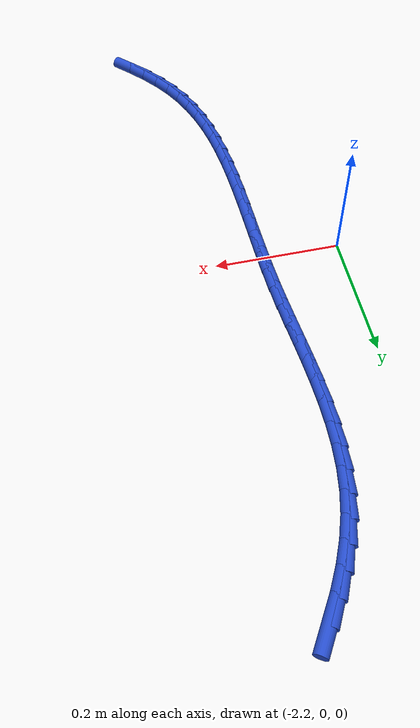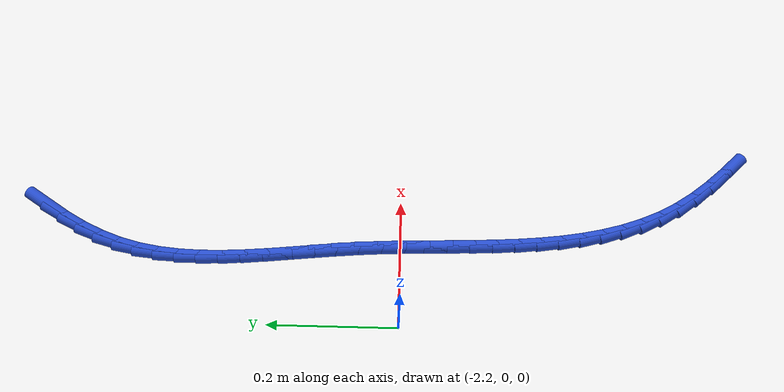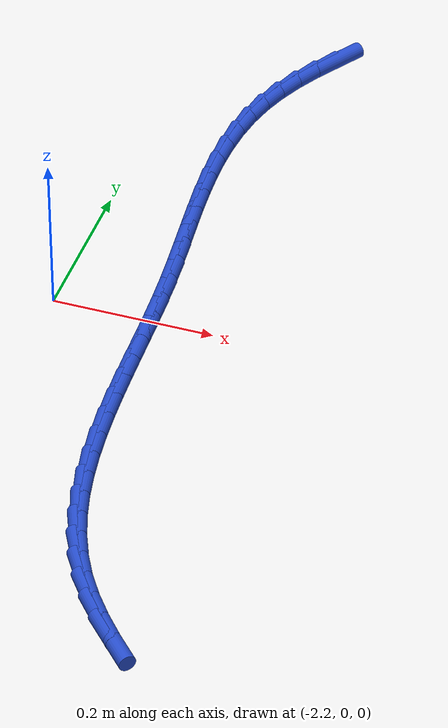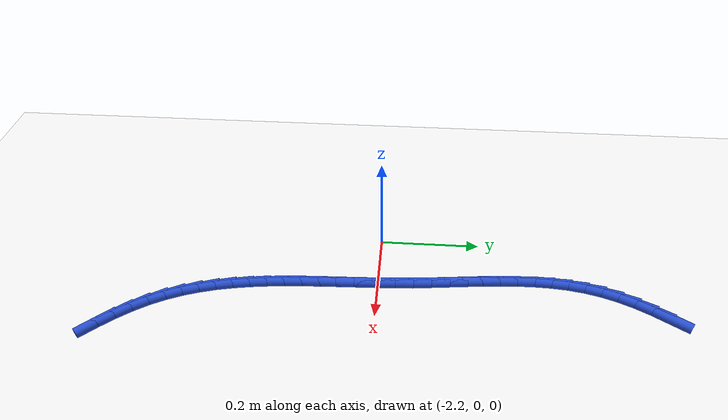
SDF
<sdf version="1.6">
 <world name="default">
  <model name="ground_plane">
   <static>1</static>
   <link name="link">
    <collision name="collision">
     <geometry><plane><normal>0 0 1</normal><size>100 100</size></plane></geometry>
     <surface><friction><ode><mu>100</mu><mu2>50</mu2></ode></friction></surface>
    </collision>
    <visual name="visual">
     <cast_shadows>0</cast_shadows>
     <geometry><plane><normal>0 0 1</normal><size>100 100</size></plane></geometry>
     <material>
      <script><uri>file://media/materials/scripts/gazebo.material</uri><name>Gazebo/WhiteGlow</name></script>
     </material>
    </visual>
   </link>
  </model>
  <model name="line">
   <link name="link_83">
    <pose>-2.020036668935926 0.5485017603186237 0.01 0 1.57 0.9954416307006323</pose>
    <collision name="collision">
     <geometry><cylinder><radius>0.01</radius><length>0.08</length></cylinder></geometry>
    </collision>
    <visual name="visual">
     <material>
      <script><name>Gazebo/Blue</name><uri>file://media/materials/scripts/gazebo.material</uri></script>
     </material>
     <geometry><cylinder><radius>0.01</radius><length>0.08</length></cylinder></geometry>
    </visual>
   </link>
   <link name="link_84">
    <pose>-2.0382610854878953 0.5204014794071488 0.01 0 1.57 1.0597476678402529</pose>
    <collision name="collision">
     <geometry><cylinder><radius>0.01</radius><length>0.08</length></cylinder></geometry>
    </collision>
    <visual name="visual">
     <material>
      <script><name>Gazebo/Blue</name><uri>file://media/materials/scripts/gazebo.material</uri></script>
     </material>
     <geometry><cylinder><radius>0.01</radius><length>0.08</length></cylinder></geometry>
    </visual>
   </link>
   <link name="link_85">
    <pose>-2.054391799385333 0.49163445613892415 0.01 0 1.57 1.133859416235579</pose>
    <collision name="collision">
     <geometry><cylinder><radius>0.01</radius><length>0.08</length></cylinder></geometry>
    </collision>
    <visual name="visual">
     <material>
      <script><name>Gazebo/Blue</name><uri>file://media/materials/scripts/gazebo.material</uri></script>
     </material>
     <geometry><cylinder><radius>0.01</radius><length>0.08</length></cylinder></geometry>
    </visual>
   </link>
   <link name="link_86">
    <pose>-2.0681436458963574 0.46219001705427154 0.01 0 1.57 1.2182046653109042</pose>
    <collision name="collision">
     <geometry><cylinder><radius>0.01</radius><length>0.08</length></cylinder></geometry>
    </collision>
    <visual name="visual">
     <material>
      <script><name>Gazebo/Blue</name><uri>file://media/materials/scripts/gazebo.material</uri></script>
     </material>
     <geometry><cylinder><radius>0.01</radius><length>0.08</length></cylinder></geometry>
    </visual>
   </link>
   <link name="link_87">
    <pose>-2.079231460289089 0.43205748869351235 0.01 0 1.57 1.3106681438810828</pose>
    <collision name="collision">
     <geometry><cylinder><radius>0.01</radius><length>0.08</length></cylinder></geometry>
    </collision>
    <visual name="visual">
     <material>
      <script><name>Gazebo/Blue</name><uri>file://media/materials/scripts/gazebo.material</uri></script>
     </material>
     <geometry><cylinder><radius>0.01</radius><length>0.08</length></cylinder></geometry>
    </visual>
   </link>
   <link name="link_88">
    <pose>-2.0874358032344955 0.4012324965084866 0.01 0 1.57 1.3974873219055268</pose>
    <collision name="collision">
     <geometry><cylinder><radius>0.01</radius><length>0.08</length></cylinder></geometry>
    </collision>
    <visual name="visual">
     <material>
      <script><name>Gazebo/Blue</name><uri>file://media/materials/scripts/gazebo.material</uri></script>
     </material>
     <geometry><cylinder><radius>0.01</radius><length>0.08</length></cylinder></geometry>
    </visual>
   </link>
   <link name="link_89">
    <pose>-2.09294730133179 0.3697499653525889 0.01 0 1.57 1.472419461701992</pose>
    <collision name="collision">
     <geometry><cylinder><radius>0.01</radius><length>0.08</length></cylinder></geometry>
    </collision>
    <visual name="visual">
     <material>
      <script><name>Gazebo/Blue</name><uri>file://media/materials/scripts/gazebo.material</uri></script>
     </material>
     <geometry><cylinder><radius>0.01</radius><length>0.08</length></cylinder></geometry>
    </visual>
   </link>
   <link name="link_90">
    <pose>-2.0961144403581535 0.3376599487958346 0.01 0 1.57 1.5349253558592544</pose>
    <collision name="collision">
     <geometry><cylinder><radius>0.01</radius><length>0.08</length></cylinder></geometry>
    </collision>
    <visual name="visual">
     <material>
      <script><name>Gazebo/Blue</name><uri>file://media/materials/scripts/gazebo.material</uri></script>
     </material>
     <geometry><cylinder><radius>0.01</radius><length>0.08</length></cylinder></geometry>
    </visual>
   </link>
   <link name="link_91">
    <pose>-2.0972860374427515 0.30501253216394897 0.01 0 1.57 -1.5564666915634682</pose>
    <collision name="collision">
     <geometry><cylinder><radius>0.01</radius><length>0.08</length></cylinder></geometry>
    </collision>
    <visual name="visual">
     <material>
      <script><name>Gazebo/Blue</name><uri>file://media/materials/scripts/gazebo.material</uri></script>
     </material>
     <geometry><cylinder><radius>0.01</radius><length>0.08</length></cylinder></geometry>
    </visual>
   </link>
   <link name="link_92">
    <pose>-2.0968109097147534 0.27185780078265737 0.01 0 1.57 -1.51809503911049</pose>
    <collision name="collision">
     <geometry><cylinder><radius>0.01</radius><length>0.08</length></cylinder></geometry>
    </collision>
    <visual name="visual">
     <material>
      <script><name>Gazebo/Blue</name><uri>file://media/materials/scripts/gazebo.material</uri></script>
     </material>
     <geometry><cylinder><radius>0.01</radius><length>0.08</length></cylinder></geometry>
    </visual>
   </link>
   <link name="link_93">
    <pose>-2.095037874303325 0.23824583997768498 0.01 0 1.57 -1.4909488869938654</pose>
    <collision name="collision">
     <geometry><cylinder><radius>0.01</radius><length>0.08</length></cylinder></geometry>
    </collision>
    <visual name="visual">
     <material>
      <script><name>Gazebo/Blue</name><uri>file://media/materials/scripts/gazebo.material</uri></script>
     </material>
     <geometry><cylinder><radius>0.01</radius><length>0.08</length></cylinder></geometry>
    </visual>
   </link>
   <link name="link_94">
    <pose>-2.0923157483376347 0.2042267350747572 0.01 0 1.57 -1.4744472321491544</pose>
    <collision name="collision">
     <geometry><cylinder><radius>0.01</radius><length>0.08</length></cylinder></geometry>
    </collision>
    <visual name="visual">
     <material>
      <script><name>Gazebo/Blue</name><uri>file://media/materials/scripts/gazebo.material</uri></script>
     </material>
     <geometry><cylinder><radius>0.01</radius><length>0.08</length></cylinder></geometry>
    </visual>
   </link>
   <link name="link_95">
    <pose>-2.0889933489468486 0.16985057139959936 0.01 0 1.57 -1.4681156856893767</pose>
    <collision name="collision">
     <geometry><cylinder><radius>0.01</radius><length>0.08</length></cylinder></geometry>
    </collision>
    <visual name="visual">
     <material>
      <script><name>Gazebo/Blue</name><uri>file://media/materials/scripts/gazebo.material</uri></script>
     </material>
     <geometry><cylinder><radius>0.01</radius><length>0.08</length></cylinder></geometry>
    </visual>
   </link>
   <link name="link_96">
    <pose>-2.085419493260136 0.1351674342779372 0.01 0 1.57 -1.4716238155051418</pose>
    <collision name="collision">
     <geometry><cylinder><radius>0.01</radius><length>0.08</length></cylinder></geometry>
    </collision>
    <visual name="visual">
     <material>
      <script><name>Gazebo/Blue</name><uri>file://media/materials/scripts/gazebo.material</uri></script>
     </material>
     <geometry><cylinder><radius>0.01</radius><length>0.08</length></cylinder></geometry>
    </visual>
   </link>
   <link name="link_97">
    <pose>-2.081942998406663 0.10022740903549524 0.01 0 1.57 -1.4847902325735955</pose>
    <collision name="collision">
     <geometry><cylinder><radius>0.01</radius><length>0.08</length></cylinder></geometry>
    </collision>
    <visual name="visual">
     <material>
      <script><name>Gazebo/Blue</name><uri>file://media/materials/scripts/gazebo.material</uri></script>
     </material>
     <geometry><cylinder><radius>0.01</radius><length>0.08</length></cylinder></geometry>
    </visual>
   </link>
   <link name="link_98">
    <pose>-2.0789126815155963 0.06508058099799927 0.01 0 1.57 -1.5057254777299764</pose>
    <collision name="collision">
     <geometry><cylinder><radius>0.01</radius><length>0.08</length></cylinder></geometry>
    </collision>
    <visual name="visual">
     <material>
      <script><name>Gazebo/Blue</name><uri>file://media/materials/scripts/gazebo.material</uri></script>
     </material>
     <geometry><cylinder><radius>0.01</radius><length>0.08</length></cylinder></geometry>
    </visual>
   </link>
   <link name="link_99">
    <pose>-2.076612486736325 0.029781404965039598 0.01 0 1.57 -1.523644288274695</pose>
    <collision name="collision">
     <geometry><cylinder><radius>0.01</radius><length>0.08</length></cylinder></geometry>
    </collision>
    <visual name="visual">
     <material>
      <script><name>Gazebo/Blue</name><uri>file://media/materials/scripts/gazebo.material</uri></script>
     </material>
     <geometry><cylinder><radius>0.01</radius><length>0.08</length></cylinder></geometry>
    </visual>
   </link>
   <link name="link_100">
    <pose>-2.0749434217937957 -0.005589871850615254 0.01 0 1.57 -1.534692976717922</pose>
    <collision name="collision">
     <geometry><cylinder><radius>0.01</radius><length>0.08</length></cylinder></geometry>
    </collision>
    <visual name="visual">
     <material>
      <script><name>Gazebo/Blue</name><uri>file://media/materials/scripts/gazebo.material</uri></script>
     </material>
     <geometry><cylinder><radius>0.01</radius><length>0.08</length></cylinder></geometry>
    </visual>
   </link>
   <link name="link_101">
    <pose>-2.0736664799341002 -0.04094357165958111 0.01 0 1.57 -1.5389164289456263</pose>
    <collision name="collision">
     <geometry><cylinder><radius>0.01</radius><length>0.08</length></cylinder></geometry>
    </collision>
    <visual name="visual">
     <material>
      <script><name>Gazebo/Blue</name><uri>file://media/materials/scripts/gazebo.material</uri></script>
     </material>
     <geometry><cylinder><radius>0.01</radius><length>0.08</length></cylinder></geometry>
    </visual>
   </link>
   <link name="link_102">
    <pose>-2.072542446492661 -0.07619000266879705 0.01 0 1.57 -1.5362777188165193</pose>
    <collision name="collision">
     <geometry><cylinder><radius>0.01</radius><length>0.08</length></cylinder></geometry>
    </collision>
    <visual name="visual">
     <material>
      <script><name>Gazebo/Blue</name><uri>file://media/materials/scripts/gazebo.material</uri></script>
     </material>
     <geometry><cylinder><radius>0.01</radius><length>0.08</length></cylinder></geometry>
    </visual>
   </link>
   <link name="link_103">
    <pose>-2.0713321068049004 -0.1112394730852024 0.01 0 1.57 -1.5266439094920232</pose>
    <collision name="collision">
     <geometry><cylinder><radius>0.01</radius><length>0.08</length></cylinder></geometry>
    </collision>
    <visual name="visual">
     <material>
      <script><name>Gazebo/Blue</name><uri>file://media/materials/scripts/gazebo.material</uri></script>
     </material>
     <geometry><cylinder><radius>0.01</radius><length>0.08</length></cylinder></geometry>
    </visual>
   </link>
   <link name="link_104">
    <pose>-2.0697962462062396 -0.14600229111573615 0.01 0 1.57 -1.5097842827070018</pose>
    <collision name="collision">
     <geometry><cylinder><radius>0.01</radius><length>0.08</length></cylinder></geometry>
    </collision>
    <visual name="visual">
     <material>
      <script><name>Gazebo/Blue</name><uri>file://media/materials/scripts/gazebo.material</uri></script>
     </material>
     <geometry><cylinder><radius>0.01</radius><length>0.08</length></cylinder></geometry>
    </visual>
   </link>
   <link name="link_105">
    <pose>-2.0676956500321024 -0.18038876496733752 0.01 0 1.57 -1.4853764806179743</pose>
    <collision name="collision">
     <geometry><cylinder><radius>0.01</radius><length>0.08</length></cylinder></geometry>
    </collision>
    <visual name="visual">
     <material>
      <script><name>Gazebo/Blue</name><uri>file://media/materials/scripts/gazebo.material</uri></script>
     </material>
     <geometry><cylinder><radius>0.01</radius><length>0.08</length></cylinder></geometry>
    </visual>
   </link>
   <link name="link_106">
    <pose>-2.064791103617908 -0.21430920284694555 0.01 0 1.57 -1.453023914822367</pose>
    <collision name="collision">
     <geometry><cylinder><radius>0.01</radius><length>0.08</length></cylinder></geometry>
    </collision>
    <visual name="visual">
     <material>
      <script><name>Gazebo/Blue</name><uri>file://media/materials/scripts/gazebo.material</uri></script>
     </material>
     <geometry><cylinder><radius>0.01</radius><length>0.08</length></cylinder></geometry>
    </visual>
   </link>
   <link name="link_107">
    <pose>-2.060843392299082 -0.24767391296149954 0.01 0 1.57 -1.4122899376955553</pose>
    <collision name="collision">
     <geometry><cylinder><radius>0.01</radius><length>0.08</length></cylinder></geometry>
    </collision>
    <visual name="visual">
     <material>
      <script><name>Gazebo/Blue</name><uri>file://media/materials/scripts/gazebo.material</uri></script>
     </material>
     <geometry><cylinder><radius>0.01</radius><length>0.08</length></cylinder></geometry>
    </visual>
   </link>
   <link name="link_108">
    <pose>-2.0556133014110443 -0.28039320351793856 0.01 0 1.57 -1.362756068350395</pose>
    <collision name="collision">
     <geometry><cylinder><radius>0.01</radius><length>0.08</length></cylinder></geometry>
    </collision>
    <visual name="visual">
     <material>
      <script><name>Gazebo/Blue</name><uri>file://media/materials/scripts/gazebo.material</uri></script>
     </material>
     <geometry><cylinder><radius>0.01</radius><length>0.08</length></cylinder></geometry>
    </visual>
   </link>
   <link name="link_109">
    <pose>-2.0488616162892175 -0.3123773827232018 0.01 0 1.57 -1.3041117224252987</pose>
    <collision name="collision">
     <geometry><cylinder><radius>0.01</radius><length>0.08</length></cylinder></geometry>
    </collision>
    <visual name="visual">
     <material>
      <script><name>Gazebo/Blue</name><uri>file://media/materials/scripts/gazebo.material</uri></script>
     </material>
     <geometry><cylinder><radius>0.01</radius><length>0.08</length></cylinder></geometry>
    </visual>
   </link>
   <link name="link_110">
    <pose>-2.0403491222690233 -0.34353675878422835 0.01 0 1.57 -1.2362789809003452</pose>
    <collision name="collision">
     <geometry><cylinder><radius>0.01</radius><length>0.08</length></cylinder></geometry>
    </collision>
    <visual name="visual">
     <material>
      <script><name>Gazebo/Blue</name><uri>file://media/materials/scripts/gazebo.material</uri></script>
     </material>
     <geometry><cylinder><radius>0.01</radius><length>0.08</length></cylinder></geometry>
    </visual>
   </link>
   <link name="link_111">
    <pose>-2.0298366046858844 -0.3737816399079574 0.01 0 1.57 -1.15956476094815</pose>
    <collision name="collision">
     <geometry><cylinder><radius>0.01</radius><length>0.08</length></cylinder></geometry>
    </collision>
    <visual name="visual">
     <material>
      <script><name>Gazebo/Blue</name><uri>file://media/materials/scripts/gazebo.material</uri></script>
     </material>
     <geometry><cylinder><radius>0.01</radius><length>0.08</length></cylinder></geometry>
    </visual>
   </link>
   <link name="link_112">
    <pose>-2.0170848488752227 -0.40302233430132806 0.01 0 1.57 -1.0748127150763933</pose>
    <collision name="collision">
     <geometry><cylinder><radius>0.01</radius><length>0.08</length></cylinder></geometry>
    </collision>
    <visual name="visual">
     <material>
      <script><name>Gazebo/Blue</name><uri>file://media/materials/scripts/gazebo.material</uri></script>
     </material>
     <geometry><cylinder><radius>0.01</radius><length>0.08</length></cylinder></geometry>
    </visual>
   </link>
   <link name="link_113">
    <pose>-2.001854640172461 -0.43116915017127955 0.01 0 1.57 -0.9856146404977786</pose>
    <collision name="collision">
     <geometry><cylinder><radius>0.01</radius><length>0.08</length></cylinder></geometry>
    </collision>
    <visual name="visual">
     <material>
      <script><name>Gazebo/Blue</name><uri>file://media/materials/scripts/gazebo.material</uri></script>
     </material>
     <geometry><cylinder><radius>0.01</radius><length>0.08</length></cylinder></geometry>
    </visual>
   </link>
   <link name="link_114">
    <pose>-1.9839735339199358 -0.45815544024462984 0.01 0 1.57 -0.9075027163497561</pose>
    <collision name="collision">
     <geometry><cylinder><radius>0.01</radius><length>0.08</length></cylinder></geometry>
    </collision>
    <visual name="visual">
     <material>
      <script><name>Gazebo/Blue</name><uri>file://media/materials/scripts/gazebo.material</uri></script>
     </material>
     <geometry><cylinder><radius>0.01</radius><length>0.08</length></cylinder></geometry>
    </visual>
   </link>
   <link name="link_115">
    <pose>-1.9637230397320546 -0.48407123176015265 0.01 0 1.57 -0.8457941318825607</pose>
    <collision name="collision">
     <geometry><cylinder><radius>0.01</radius><length>0.08</length></cylinder></geometry>
    </collision>
    <visual name="visual">
     <material>
      <script><name>Gazebo/Blue</name><uri>file://media/materials/scripts/gazebo.material</uri></script>
     </material>
     <geometry><cylinder><radius>0.01</radius><length>0.08</length></cylinder></geometry>
    </visual>
   </link>
   <link name="link_116">
    <pose>-1.9415736347070207 -0.5090717708346469 0.01 0 1.57 -0.7992734333436672</pose>
    <collision name="collision">
     <geometry><cylinder><radius>0.01</radius><length>0.08</length></cylinder></geometry>
    </collision>
    <visual name="visual">
     <material>
      <script><name>Gazebo/Blue</name><uri>file://media/materials/scripts/gazebo.material</uri></script>
     </material>
     <geometry><cylinder><radius>0.01</radius><length>0.08</length></cylinder></geometry>
    </visual>
   </link>
  </model>
 </world>
</sdf>
